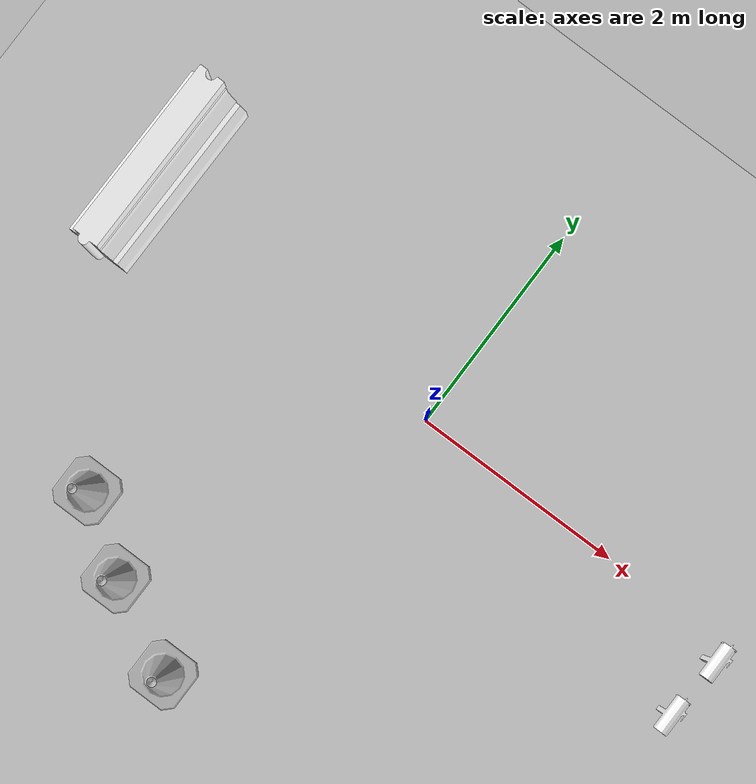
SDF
<sdf version="1.7">
 <world name="default">
  <light name="sun" type="directional">
   <pose>0 0 10 0 -0 0</pose>
   <diffuse>0.8 0.8 0.8 1</diffuse>
   <specular>0.2 0.2 0.2 1</specular>
   <attenuation>
    <range>1000</range>
    <constant>0.9</constant>
    <linear>0.01</linear>
    <quadratic>0.001</quadratic>
   </attenuation>
   <direction>-0.5 0.1 -0.9</direction>
   <spot><inner_angle>0</inner_angle><outer_angle>0</outer_angle><falloff>0</falloff></spot>
  </light>
  <model name="ground_plane">
   <static>1</static>
   <link name="link">
    <collision name="collision">
     <geometry><plane><normal>0 0 1</normal><size>100 100</size></plane></geometry>
     <surface>
      <contact><collide_bitmask>65535</collide_bitmask></contact>
      <friction><ode><mu>100</mu><mu2>50</mu2></ode></friction>
     </surface>
    </collision>
    <visual name="visual">
     <cast_shadows>0</cast_shadows>
     <geometry><plane><normal>0 0 1</normal><size>100 100</size></plane></geometry>
     <material>
      <script><uri>file://media/materials/scripts/gazebo.material</uri><name>Gazebo/Grey</name></script>
     </material>
    </visual>
   </link>
  </model>
  <gravity>0 0 -9.8</gravity>
  <magnetic_field>6e-06 2.3e-05 -4.2e-05</magnetic_field>
  <atmosphere type="adiabatic"/>
  <physics type="ode">
   <max_step_size>0.001</max_step_size>
   <real_time_factor>1</real_time_factor>
   <real_time_update_rate>1000</real_time_update_rate>
  </physics>
  <scene><ambient>0.4 0.4 0.4 1</ambient><background>0.7 0.7 0.7 1</background><shadows>1</shadows></scene>
  <spherical_coordinates>
   <surface_model>EARTH_WGS84</surface_model>
   <latitude_deg>0</latitude_deg>
   <longitude_deg>0</longitude_deg>
   <elevation>0</elevation>
   <heading_deg>0</heading_deg>
  </spherical_coordinates>
  <model name="drc_practice_white_jersey_barrier">
   <static>1</static>
   <link name="link">
    <visual name="visual">
     <geometry>
      <mesh><uri>model://drc_practice_white_jersey_barrier/meshes/jersey_barrier.dae</uri></mesh>
     </geometry>
    </visual>
    <collision name="collision">
     <geometry>
      <mesh><uri>model://drc_practice_white_jersey_barrier/meshes/jersey_barrier.dae</uri></mesh>
     </geometry>
    </collision>
   </link>
   <pose>-3.15478 0.322627 0 0 -0 0</pose>
  </model>
  <model name="Mailbox">
   <link name="link">
    <collision name="collision">
     <geometry><mesh><uri>model://mailbox/meshes/mailbox.dae</uri></mesh></geometry>
    </collision>
    <visual name="visual">
     <geometry><mesh><uri>model://mailbox/meshes/mailbox.dae</uri></mesh></geometry>
     <material>
      <script>
       <uri>model://mailbox/materials/scripts</uri>
       <uri>model://mailbox/materials/textures</uri>
       <name>Mailbox/Diffuse</name>
      </script>
     </material>
    </visual>
    <inertial>
     <inertia><ixx>1</ixx><ixy>0</ixy><ixz>0</ixz><iyy>1</iyy><iyz>0</iyz><izz>1</izz></inertia>
     <mass>1</mass>
    </inertial>
   </link>
   <pose>3.15859 -0.192981 -1e-05 -1e-06 -4e-06 0</pose>
  </model>
  <model name="Mailbox_0">
   <link name="link">
    <collision name="collision">
     <geometry><mesh><uri>model://mailbox/meshes/mailbox.dae</uri></mesh></geometry>
    </collision>
    <visual name="visual">
     <geometry><mesh><uri>model://mailbox/meshes/mailbox.dae</uri></mesh></geometry>
     <material>
      <script>
       <uri>model://mailbox/materials/scripts</uri>
       <uri>model://mailbox/materials/textures</uri>
       <name>Mailbox/Diffuse</name>
      </script>
     </material>
    </visual>
    <inertial>
     <inertia><ixx>1</ixx><ixy>0</ixy><ixz>0</ixz><iyy>1</iyy><iyz>0</iyz><izz>1</izz></inertia>
     <mass>1</mass>
    </inertial>
   </link>
   <pose>3.1179 -0.771037 -1e-05 -5e-06 -7e-06 0</pose>
  </model>
  <model name="Construction Cone">
   <link name="link">
    <collision name="collision">
     <geometry>
      <mesh><scale>10 10 10</scale><uri>model://construction_cone/meshes/construction_cone.dae</uri></mesh>
     </geometry>
    </collision>
    <visual name="visual">
     <geometry>
      <mesh><scale>10 10 10</scale><uri>model://construction_cone/meshes/construction_cone.dae</uri></mesh>
     </geometry>
    </visual>
    <inertial>
     <inertia><ixx>1</ixx><ixy>0</ixy><ixz>0</ixz><iyy>1</iyy><iyz>0</iyz><izz>1</izz></inertia>
     <mass>1</mass>
    </inertial>
   </link>
   <pose>-1.96907 -2.26061 -0 0 -0 0</pose>
  </model>
  <model name="Construction Cone_0">
   <link name="link">
    <collision name="collision">
     <geometry>
      <mesh><scale>10 10 10</scale><uri>model://construction_cone/meshes/construction_cone.dae</uri></mesh>
     </geometry>
    </collision>
    <visual name="visual">
     <geometry>
      <mesh><scale>10 10 10</scale><uri>model://construction_cone/meshes/construction_cone.dae</uri></mesh>
     </geometry>
    </visual>
    <inertial>
     <inertia><ixx>1</ixx><ixy>0</ixy><ixz>0</ixz><iyy>1</iyy><iyz>0</iyz><izz>1</izz></inertia>
     <mass>1</mass>
    </inertial>
   </link>
   <pose>-1.31106 -2.71353 -1e-05 -1e-06 0 0</pose>
  </model>
  <model name="Construction Cone_1">
   <link name="link">
    <collision name="collision">
     <geometry>
      <mesh><scale>10 10 10</scale><uri>model://construction_cone/meshes/construction_cone.dae</uri></mesh>
     </geometry>
    </collision>
    <visual name="visual">
     <geometry>
      <mesh><scale>10 10 10</scale><uri>model://construction_cone/meshes/construction_cone.dae</uri></mesh>
     </geometry>
    </visual>
    <inertial>
     <inertia><ixx>1</ixx><ixy>0</ixy><ixz>0</ixz><iyy>1</iyy><iyz>0</iyz><izz>1</izz></inertia>
     <mass>1</mass>
    </inertial>
   </link>
   <pose>-0.479089 -3.12545 -0 0 -0 0</pose>
  </model>
 </world>
</sdf>
